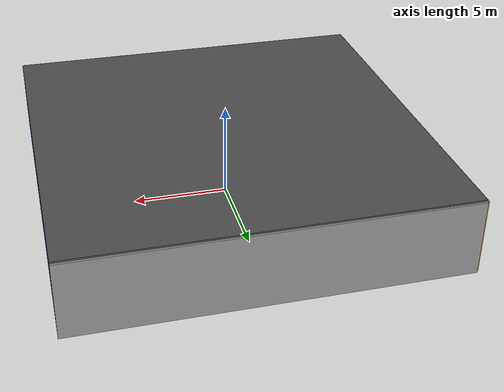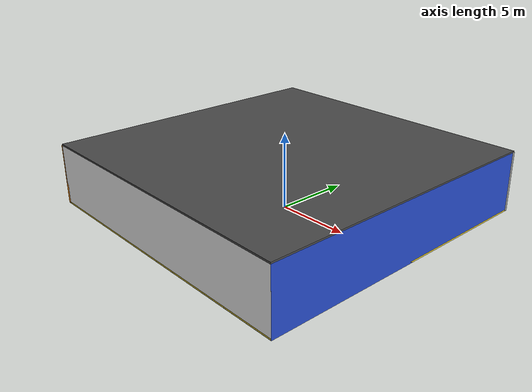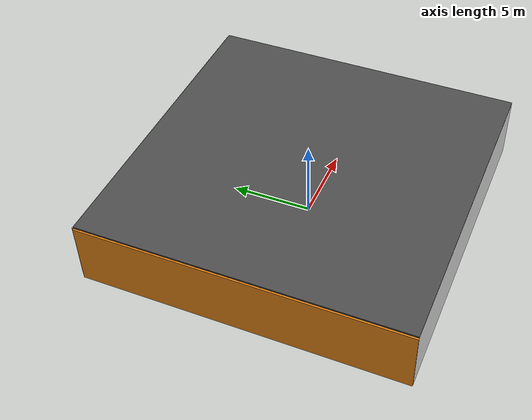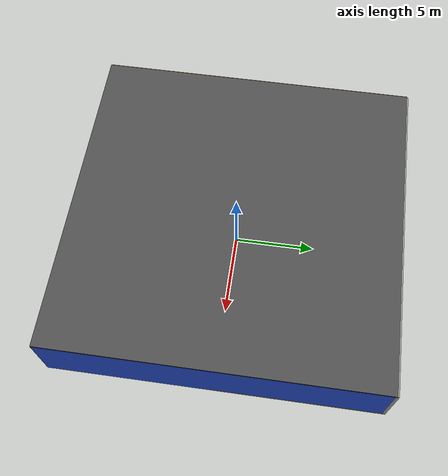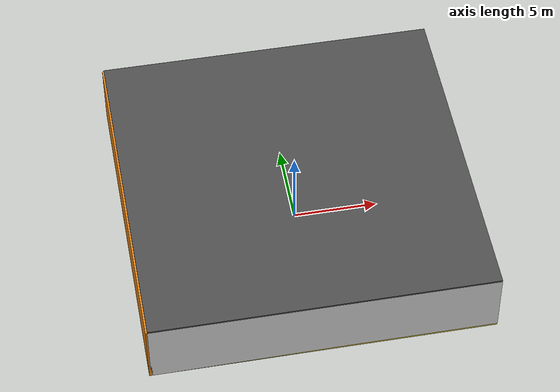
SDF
<sdf version="1.4">
 <world name="default">
  <physics type="ode">
   <max_step_size>0.001</max_step_size>
   <real_time_factor>1</real_time_factor>
   <real_time_update_rate>1000</real_time_update_rate>
   <gravity>0 0 -9.8</gravity>
  </physics>
  <scene><ambient>0.4 0.4 0.4 1</ambient><background>0.7 0.7 0.7 1</background><shadows>1</shadows></scene>
  <model name="Surrounding">
   <static>1</static>
   <link name="Ceiling">
    <collision name="Ceiling_Collision"><geometry><box><size>20 20 0.1</size></box></geometry></collision>
    <visual name="Ceiling_Visual">
     <geometry><box><size>20 20 0.1</size></box></geometry>
     <material>
      <script><uri>file://media/materials/scripts/gazebo.material</uri><name>Gazebo/DarkGrey</name></script>
     </material>
    </visual>
    <pose>0 0 4.05 0 0 0</pose>
   </link>
   <link name="Wall_South">
    <collision name="Wall_South_Collision">
     <geometry><box><size>20 0 4</size></box></geometry>
     <pose>0 0 2 0 -0 0</pose>
    </collision>
    <visual name="Wall_South_Visual">
     <pose>0 0 2 0 -0 0</pose>
     <geometry><box><size>20 0 4</size></box></geometry>
     <material>
      <script><uri>file://media/materials/scripts/gazebo.material</uri><name>Gazebo/WhiteGlow</name></script>
     </material>
    </visual>
    <velocity_decay><linear>0</linear><angular>0</angular></velocity_decay>
    <pose>0 -10 0 0 -0 0</pose>
   </link>
   <link name="Wall_East">
    <collision name="Wall_21_Collision">
     <geometry><box><size>20 0 4</size></box></geometry>
     <pose>0 0 2 0 -0 0</pose>
    </collision>
    <visual name="Wall_21_Visual">
     <pose>0 0 2 0 -0 0</pose>
     <geometry><box><size>20 0 4</size></box></geometry>
     <material>
      <script><uri>file://media/materials/scripts/gazebo.material</uri><name>Gazebo/Blue</name></script>
     </material>
    </visual>
    <velocity_decay><linear>0</linear><angular>0</angular></velocity_decay>
    <pose>10 0 0 0 -0 1.5708</pose>
   </link>
   <link name="Wall_North">
    <collision name="Wall_22_Collision">
     <geometry><box><size>20 0.2 4</size></box></geometry>
     <pose>0 0 2 0 -0 0</pose>
    </collision>
    <visual name="Wall_22_Visual">
     <pose>0 0 2 0 -0 0</pose>
     <geometry><box><size>20 0.2 4</size></box></geometry>
     <material>
      <script><uri>file://media/materials/scripts/gazebo.material</uri><name>Gazebo/Grey</name></script>
     </material>
    </visual>
    <velocity_decay><linear>0</linear><angular>0</angular></velocity_decay>
    <pose>0 10 0 0 -0 0</pose>
   </link>
   <link name="Wall_West">
    <collision name="Wall_23_Collision">
     <geometry><box><size>20 0.2 4</size></box></geometry>
     <pose>0 0 2 0 -0 0</pose>
    </collision>
    <visual name="Wall_23_Visual">
     <pose>0 0 2 0 -0 0</pose>
     <geometry><box><size>20 0.2 4</size></box></geometry>
     <material>
      <script><uri>file://media/materials/scripts/gazebo.material</uri><name>Gazebo/Orange</name></script>
     </material>
    </visual>
    <velocity_decay><linear>0</linear><angular>0</angular></velocity_decay>
    <pose>-10 0 0 0 0 -1.5708</pose>
   </link>
   <link name="Ground_link">
    <collision name="collision">
     <pose>0 0 .05 0 -0 0</pose>
     <geometry><box><size>20 20 0.1</size></box></geometry>
    </collision>
    <visual name="visual">
     <pose>0 0 .05 0 -0 0</pose>
     <geometry><box><size>20 20 0.1</size></box></geometry>
     <material>
      <script><uri>file://media/materials/scripts/gazebo.material</uri><name>Gazebo/ZincYellow</name></script>
     </material>
    </visual>
   </link>
   <static>1</static>
  </model>
  <spherical_coordinates>
   <surface_model>EARTH_WGS84</surface_model>
   <latitude_deg>0</latitude_deg>
   <longitude_deg>0</longitude_deg>
   <elevation>0</elevation>
   <heading_deg>0</heading_deg>
  </spherical_coordinates>
  <light name="lightball_0" type="diffuse">
   <diffuse>0.8 0.8 0.8 1</diffuse>
   <specular>0.2 0.2 0.2 1</specular>
   <attenuation>
    <range>100</range>
    <constant>0.7</constant>
    <linear>0.01</linear>
    <quadratic>0.001</quadratic>
   </attenuation>
   <direction>-0.5 0.1 -0.9</direction>
   <pose>-2.16688175551 8.25747902317 2.78537359654 0 0 0</pose>
  </light>
  <light name="lightball_1" type="diffuse">
   <diffuse>0.8 0.8 0.8 1</diffuse>
   <specular>0.2 0.2 0.2 1</specular>
   <attenuation>
    <range>100</range>
    <constant>0.7</constant>
    <linear>0.01</linear>
    <quadratic>0.001</quadratic>
   </attenuation>
   <direction>-0.5 0.1 -0.9</direction>
   <pose>3.63164642521 8.25502782401 1.68519087017 0 0 0</pose>
  </light>
  <light name="lightball_2" type="diffuse">
   <diffuse>0.8 0.8 0.8 1</diffuse>
   <specular>0.2 0.2 0.2 1</specular>
   <attenuation>
    <range>100</range>
    <constant>0.7</constant>
    <linear>0.01</linear>
    <quadratic>0.001</quadratic>
   </attenuation>
   <direction>-0.5 0.1 -0.9</direction>
   <pose>8.07412145414 7.65364795074 1.96879520038 0 0 0</pose>
  </light>
  <light name="lightball_3" type="diffuse">
   <diffuse>0.8 0.8 0.8 1</diffuse>
   <specular>0.2 0.2 0.2 1</specular>
   <attenuation>
    <range>100</range>
    <constant>0.7</constant>
    <linear>0.01</linear>
    <quadratic>0.001</quadratic>
   </attenuation>
   <direction>-0.5 0.1 -0.9</direction>
   <pose>3.98140895916 7.82476295917 0.726413585855 0 0 0</pose>
  </light>
  <light name="lightball_4" type="diffuse">
   <diffuse>0.8 0.8 0.8 1</diffuse>
   <specular>0.2 0.2 0.2 1</specular>
   <attenuation>
    <range>100</range>
    <constant>0.7</constant>
    <linear>0.01</linear>
    <quadratic>0.001</quadratic>
   </attenuation>
   <direction>-0.5 0.1 -0.9</direction>
   <pose>-9.17306879646 5.45250638404 3.49888833476 0 0 0</pose>
  </light>
  <light name="lightball_5" type="diffuse">
   <diffuse>0.8 0.8 0.8 1</diffuse>
   <specular>0.2 0.2 0.2 1</specular>
   <attenuation>
    <range>100</range>
    <constant>0.7</constant>
    <linear>0.01</linear>
    <quadratic>0.001</quadratic>
   </attenuation>
   <direction>-0.5 0.1 -0.9</direction>
   <pose>-0.175858523053 -4.39140123372 1.21521290797 0 0 0</pose>
  </light>
  <include>
   <uri>model://construction_cone</uri>
   <pose>-6.32037207573 7.03439234355 0 0 0 2.05933488715</pose>
  </include>
  <include><uri>model://cabinet</uri><pose>-4.55077696846 3.44590748813 0 0 0 2.53227618058</pose></include>
  <include>
   <uri>model://robocup_3Dsim_goal</uri>
   <pose>-1.83034729768 -4.71588463303 0 0 0 2.89388985661</pose>
  </include>
  <include><uri>model://cabinet</uri><pose>1.62584053703 -2.17447807798 0 0 0 1.72931128664</pose></include>
  <include><uri>model://cabinet</uri><pose>7.11013007869 -0.895683370798 0 0 0 2.85359818591</pose></include>
 </world>
</sdf>

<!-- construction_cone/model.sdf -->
<sdf version="1.5">
  <model name="Construction Cone">
    <link name="link">
      <collision name="collision">
        <geometry>
          <mesh>
            <scale>10 10 10</scale>
            <uri>file://isr-testbed/construction_cone/meshes/construction_cone.dae</uri>
          </mesh>
        </geometry>
      </collision>
      <visual name="visual">
        <geometry>
          <mesh>
            <scale>10 10 10</scale>
            <uri>file://isr-testbed/construction_cone/meshes/construction_cone.dae</uri>
          </mesh>
        </geometry>
      </visual>
    </link>
  </model>
</sdf>

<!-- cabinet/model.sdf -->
<sdf version="1.5">
  <model name="cabinet">
    <static>true</static>
    <link name="cabinet_bottom_plate">
      <inertial>
        <pose>0 0 -1 0 0 0</pose>
        <inertia>
          <ixx>2.050000</ixx>
          <ixy>0</ixy>
          <ixz>0</ixz>
          <iyy>2.050000</iyy>
          <iyz>0</iyz>
          <izz>2.050000</izz>
        </inertia>
        <mass>25.000000</mass>
      </inertial>
      <collision name="cabinet_bottom_plate_geom">
        <pose>0 0 0.010000 0 0 0</pose>
        <geometry>
          <box>
            <size>0.450000 0.450000 0.020000</size>
          </box>
        </geometry>
      </collision>
      <visual name="cabinet_bottom_plate_geom_visual">
        <pose>0 0 0.010000 0 0 0</pose>
        <geometry>
          <box>
            <size>0.450000 0.450000 0.020000</size>
          </box>
        </geometry>
        <material>
          <script>
            <uri>model://media/materials/scripts/gazebo.material</uri>
            <name>Gazebo/Wood</name>
          </script>
        </material>
      </visual>
      <collision name="cabinet_bottom_plate_geom_cabinet_back_plate">
        <pose>0.235000 0 0.510000 0 0 0</pose>
        <geometry>
          <box>
            <size>0.020000 0.450000 1.020000</size>
          </box>
        </geometry>
      </collision>
      <visual name="cabinet_bottom_plate_geom_cabinet_back_plate_visual">
        <pose>0.235000 0 0.510000 0 0 0</pose>
        <geometry>
          <box>
            <size>0.020000 0.450000 1.020000</size>
          </box>
        </geometry>
        <material>
          <script>
            <uri>model://media/materials/scripts/gazebo.material</uri>
            <name>Gazebo/Wood</name>
          </script>
        </material>
      </visual>
      <collision name="cabinet_bottom_plate_geom_cabinet_left_plate">
        <pose>0 0.235000 0.510000 0 0 0</pose>
        <geometry>
          <box>
            <size>0.450000 0.020000 1.020000</size>
          </box>
        </geometry>
      </collision>
      <visual name="cabinet_bottom_plate_geom_cabinet_left_plate_visual">
        <pose>0 0.235000 0.510000 0 0 0</pose>
        <geometry>
          <box>
            <size>0.450000 0.020000 1.020000</size>
          </box>
        </geometry>
        <material>
          <script>
            <uri>model://media/materials/scripts/gazebo.material</uri>
            <name>Gazebo/Wood</name>
          </script>
        </material>
      </visual>
      <collision name="cabinet_bottom_plate_geom_cabinet_middle_plate">
        <pose>0 0 0.510000 0 0 0</pose>
        <geometry>
          <box>
            <size>0.450000 0.450000 0.020000</size>
          </box>
        </geometry>
      </collision>
      <visual name="cabinet_bottom_plate_geom_cabinet_middle_plate_visual">
        <pose>0 0 0.510000 0 0 0</pose>
        <geometry>
          <box>
            <size>0.450000 0.450000 0.020000</size>
          </box>
        </geometry>
        <material>
          <script>
            <uri>model://media/materials/scripts/gazebo.material</uri>
            <name>Gazebo/Wood</name>
          </script>
        </material>
      </visual>
      <collision name="cabinet_bottom_plate_geom_cabinet_right_plate">
        <pose>0 -0.235000 0.510000 0 0 0</pose>
        <geometry>
          <box>
            <size>0.450000 0.020000 1.020000</size>
          </box>
        </geometry>
      </collision>
      <visual name="cabinet_bottom_plate_geom_cabinet_right_plate_visual">
        <pose>0 -0.235000 0.510000 0 0 0</pose>
        <geometry>
          <box>
            <size>0.450000 0.020000 1.020000</size>
          </box>
        </geometry>
        <material>
          <script>
            <uri>model://media/materials/scripts/gazebo.material</uri>
            <name>Gazebo/Wood</name>
          </script>
        </material>
      </visual>
      <collision name="cabinet_bottom_plate_geom_cabinet_top_plate">
        <pose>0 0 1.010000 0 0 0</pose>
        <geometry>
          <box>
            <size>0.450000 0.450000 0.020000</size>
          </box>
        </geometry>
      </collision>
      <visual name="cabinet_bottom_plate_geom_cabinet_top_plate_visual">
        <pose>0 0 1.010000 0 0 0</pose>
        <geometry>
          <box>
            <size>0.450000 0.450000 0.020000</size>
          </box>
        </geometry>
        <material>
          <script>
            <uri>model://media/materials/scripts/gazebo.material</uri>
            <name>Gazebo/Wood</name>
          </script>
        </material>
      </visual>
    </link>
  </model>
</sdf>

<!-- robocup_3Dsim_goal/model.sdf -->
<sdf version="1.5">
  <model name="robocup_3d_goal">
    <static>true</static>
    <link name="left_post">
      <pose>0 1.05 0.45 0 0 0</pose>
      <collision name="collision">
        <geometry>
          <cylinder>
            <radius>0.05</radius>
            <length>0.9</length>
          </cylinder>
        </geometry>
      </collision>
      <visual name="visual">
        <geometry>
          <cylinder>
            <radius>0.05</radius>
            <length>0.9</length>
          </cylinder>
        </geometry>
        <material>
          <script>
            <uri>file://media/materials/scripts/gazebo.material</uri>
            <name>Gazebo/ZincYellow</name>
          </script>
        </material>
      </visual>
    </link>
    <link name="left_support_horiz_lower">
      <pose>0.30 1.05 0.01 0 0 0</pose>
      <collision name="collision">
        <geometry>
          <box>
            <size>0.50 0.02 0.02</size>
          </box>
        </geometry>
      </collision>
      <visual name="visual">
        <geometry>
          <box>
            <size>0.50 0.02 0.02</size>
          </box>
        </geometry>
        <material>
          <script>
            <uri>file://media/materials/scripts/gazebo.material</uri>
            <name>Gazebo/White</name>
          </script>
        </material>
      </visual>
    </link>
    <link name="left_support_horiz_upper">
      <pose>0.30 1.05 0.79 0 0 0</pose>
      <collision name="collision">
        <geometry>
          <box>
            <size>0.50 0.02 0.02</size>
          </box>
        </geometry>
      </collision>
      <visual name="visual">
        <geometry>
          <box>
            <size>0.50 0.02 0.02</size>
          </box>
        </geometry>
        <material>
          <script>
            <uri>file://media/materials/scripts/gazebo.material</uri>
            <name>Gazebo/White</name>
          </script>
        </material>
      </visual>
    </link>
    <link name="left_support_vertical">
      <pose>0.56 1.05 0.4 0 1.5708 0</pose>
      <collision name="collision">
        <geometry>
          <box>
            <size>0.80 0.02 0.02</size>
          </box>
        </geometry>
      </collision>
      <visual name="visual">
        <geometry>
          <box>
            <size>0.80 0.02 0.02</size>
          </box>
        </geometry>
        <material>
          <script>
            <uri>file://media/materials/scripts/gazebo.material</uri>
            <name>Gazebo/White</name>
          </script>
        </material>
      </visual>
    </link>
    <link name="right_support_horiz_lower">
      <pose>0.30 -1.05 0.01 0 0 0</pose>
      <collision name="collision">
        <geometry>
          <box>
            <size>0.50 0.02 0.02</size>
          </box>
        </geometry>
      </collision>
      <visual name="visual">
        <geometry>
          <box>
            <size>0.50 0.02 0.02</size>
          </box>
        </geometry>
        <material>
          <script>
            <uri>file://media/materials/scripts/gazebo.material</uri>
            <name>Gazebo/White</name>
          </script>
        </material>
      </visual>
    </link>
    <link name="right_support_horiz_upper">
      <pose>0.30 -1.05 0.79 0 0 0</pose>
      <collision name="collision">
        <geometry>
          <box>
            <size>0.50 0.02 0.02</size>
          </box>
        </geometry>
      </collision>
      <visual name="visual">
        <geometry>
          <box>
            <size>0.50 0.02 0.02</size>
          </box>
        </geometry>
        <material>
          <script>
            <uri>file://media/materials/scripts/gazebo.material</uri>
            <name>Gazebo/White</name>
          </script>
        </material>
      </visual>
    </link>
    <link name="right_support_vertical">
      <pose>0.56 -1.05 0.4 0 1.5708 0</pose>
      <collision name="collision">
        <geometry>
          <box>
            <size>0.80 0.02 0.02</size>
          </box>
        </geometry>
      </collision>
      <visual name="visual">
        <geometry>
          <box>
            <size>0.80 0.02 0.02</size>
          </box>
        </geometry>
        <material>
          <script>
            <uri>file://media/materials/scripts/gazebo.material</uri>
            <name>Gazebo/White</name>
          </script>
        </material>
      </visual>
    </link>
    <link name="center_support_horiz_lower">
      <pose>0.56 0 0.01 0 1.5708 0</pose>
      <collision name="collision">
        <geometry>
          <box>
            <size>0.02 2.08 0.02</size>
          </box>
        </geometry>
      </collision>
      <visual name="visual">
        <geometry>
          <box>
            <size>0.02 2.08 0.02</size>
          </box>
        </geometry>
        <material>
          <script>
            <uri>file://media/materials/scripts/gazebo.material</uri>
            <name>Gazebo/White</name>
          </script>
        </material>
      </visual>
    </link>
    <link name="center_support_horiz_upper">
      <pose>0.56 0 0.79 0 1.5708 0</pose>
      <collision name="collision">
        <geometry>
          <box>
            <size>0.02 2.08 0.02</size>
          </box>
        </geometry>
      </collision>
      <visual name="visual">
        <geometry>
          <box>
            <size>0.02 2.08 0.02</size>
          </box>
        </geometry>
        <material>
          <script>
            <uri>file://media/materials/scripts/gazebo.material</uri>
            <name>Gazebo/White</name>
          </script>
        </material>
      </visual>
    </link>
    <link name="right_post">
      <pose>0 -1.05 0.45 0 0 0</pose>
      <collision name="collision">
        <geometry>
          <cylinder>
            <radius>0.05</radius>
            <length>0.9</length>
          </cylinder>
        </geometry>
      </collision>
      <visual name="visual">
        <geometry>
          <cylinder>
            <radius>0.05</radius>
            <length>0.9</length>
          </cylinder>
        </geometry>
        <material>
          <script>
            <uri>file://media/materials/scripts/gazebo.material</uri>
            <name>Gazebo/ZincYellow</name>
          </script>
        </material>
      </visual>
    </link>
    <link name="crossbar">
      <pose>0 0 0.85 1.57 1.57 0</pose>
      <collision name="collision">
        <geometry>
          <cylinder>
            <radius>0.05</radius>
            <length>2.0</length>
          </cylinder>
        </geometry>
      </collision>
      <visual name="visual">
        <geometry>
          <cylinder>
            <radius>0.05</radius>
            <length>2.0</length>
          </cylinder>
        </geometry>
        <material>
          <script>
            <uri>file://media/materials/scripts/gazebo.material</uri>
            <name>Gazebo/ZincYellow</name>
          </script>
        </material>
      </visual>
    </link>
    <link name="center_net">
      <pose>0.56 0 0.40 0 0 0</pose>
      <collision name="collision">
        <geometry>
          <box>
            <size>0.01 2.1 0.80</size>
          </box>
        </geometry>
      </collision>
      <visual name="visual">
        <geometry>
          <box>
            <size>0.01 2.1 0.80</size>
          </box>
        </geometry>
        <material>
          <script>
            <uri>model://../model_source/models/robocup09_spl_field/materials/scripts/</uri>
            <uri>model://../model_source/models/robocup09_spl_field/materials/textures/</uri>
            <name>RoboCup/Net</name>
          </script>
        </material>
      </visual>
    </link>
    <link name="left_net">
      <pose>0.30 1.05 0.40 0 0 0</pose>
      <collision name="collision">
        <geometry>
          <box>
            <size>0.50 0.01 0.76</size>
          </box>
        </geometry>
      </collision>
      <visual name="visual">
        <geometry>
          <box>
            <size>0.50 0.01 0.76</size>
          </box>
        </geometry>
        <material>
          <script>
            <uri>model://../model_source/models/robocup09_spl_field/materials/scripts/</uri>
            <uri>model://../model_source/models/robocup09_spl_field/materials/textures/</uri>
            <name>RoboCup/Net</name>
          </script>
        </material>
      </visual>
    </link>
    <link name="right_net">
      <pose>0.30 -1.05 0.40 0 0 0</pose>
      <collision name="collision">
        <geometry>
          <box>
            <size>0.50 0.01 0.76</size>
          </box>
        </geometry>
      </collision>
      <visual name="visual">
        <geometry>
          <box>
            <size>0.50 0.01 0.76</size>
          </box>
        </geometry>
        <material>
          <script>
            <uri>model://../model_source/models/robocup09_spl_field/materials/scripts/</uri>
            <uri>model://../model_source/models/robocup09_spl_field/materials/textures/</uri>
            <name>RoboCup/Net</name>
          </script>
        </material>
      </visual>
    </link>
  </model>
</sdf>
